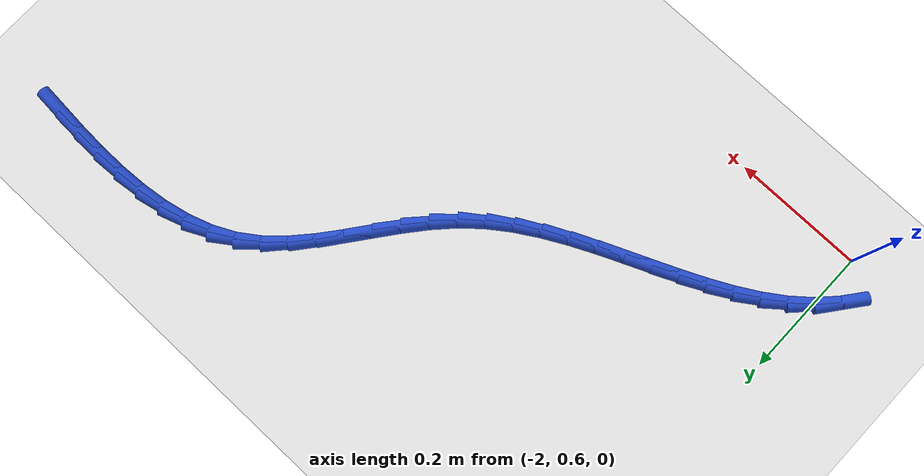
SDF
<sdf version="1.6">
 <world name="default">
  <model name="ground_plane">
   <static>1</static>
   <link name="link">
    <collision name="collision">
     <geometry><plane><normal>0 0 1</normal><size>100 100</size></plane></geometry>
     <surface><friction><ode><mu>100</mu><mu2>50</mu2></ode></friction></surface>
    </collision>
    <visual name="visual">
     <cast_shadows>0</cast_shadows>
     <geometry><plane><normal>0 0 1</normal><size>100 100</size></plane></geometry>
     <material>
      <script><uri>file://media/materials/scripts/gazebo.material</uri><name>Gazebo/WhiteGlow</name></script>
     </material>
    </visual>
   </link>
  </model>
  <model name="line">
   <link name="link_44">
    <pose>-1.0270762622498706 1.214170678971957 0.01 0 1.57 -0.0727830464954815</pose>
    <collision name="collision">
     <geometry><cylinder><radius>0.01</radius><length>0.08</length></cylinder></geometry>
    </collision>
    <visual name="visual">
     <material>
      <script><name>Gazebo/Blue</name><uri>file://media/materials/scripts/gazebo.material</uri></script>
     </material>
     <geometry><cylinder><radius>0.01</radius><length>0.08</length></cylinder></geometry>
    </visual>
   </link>
   <link name="link_45">
    <pose>-1.0687619582253773 1.217210059726688 0.01 0 1.57 -0.04250375442364984</pose>
    <collision name="collision">
     <geometry><cylinder><radius>0.01</radius><length>0.08</length></cylinder></geometry>
    </collision>
    <visual name="visual">
     <material>
      <script><name>Gazebo/Blue</name><uri>file://media/materials/scripts/gazebo.material</uri></script>
     </material>
     <geometry><cylinder><radius>0.01</radius><length>0.08</length></cylinder></geometry>
    </visual>
   </link>
   <link name="link_46">
    <pose>-1.1107633193106083 1.2189963510795672 0.01 0 1.57 -0.0006882578097971925</pose>
    <collision name="collision">
     <geometry><cylinder><radius>0.01</radius><length>0.08</length></cylinder></geometry>
    </collision>
    <visual name="visual">
     <material>
      <script><name>Gazebo/Blue</name><uri>file://media/materials/scripts/gazebo.material</uri></script>
     </material>
     <geometry><cylinder><radius>0.01</radius><length>0.08</length></cylinder></geometry>
    </visual>
   </link>
   <link name="link_47">
    <pose>-1.152607521391394 1.2190251506829914 0.01 0 1.57 0.05475779179109832</pose>
    <collision name="collision">
     <geometry><cylinder><radius>0.01</radius><length>0.08</length></cylinder></geometry>
    </collision>
    <visual name="visual">
     <material>
      <script><name>Gazebo/Blue</name><uri>file://media/materials/scripts/gazebo.material</uri></script>
     </material>
     <geometry><cylinder><radius>0.01</radius><length>0.08</length></cylinder></geometry>
    </visual>
   </link>
   <link name="link_48">
    <pose>-1.1938015529659616 1.2167671992687163 0.01 0 1.57 0.1260166704637612</pose>
    <collision name="collision">
     <geometry><cylinder><radius>0.01</radius><length>0.08</length></cylinder></geometry>
    </collision>
    <visual name="visual">
     <material>
      <script><name>Gazebo/Blue</name><uri>file://media/materials/scripts/gazebo.material</uri></script>
     </material>
     <geometry><cylinder><radius>0.01</radius><length>0.08</length></cylinder></geometry>
    </visual>
   </link>
   <link name="link_49">
    <pose>-1.2338524025325377 1.2116932375684957 0.01 0 1.57 0.2157557794045252</pose>
    <collision name="collision">
     <geometry><cylinder><radius>0.01</radius><length>0.08</length></cylinder></geometry>
    </collision>
    <visual name="visual">
     <material>
      <script><name>Gazebo/Blue</name><uri>file://media/materials/scripts/gazebo.material</uri></script>
     </material>
     <geometry><cylinder><radius>0.01</radius><length>0.08</length></cylinder></geometry>
    </visual>
   </link>
   <link name="link_50">
    <pose>-1.2722670585893485 1.2032740063140848 0.01 0 1.57 0.3266686214591587</pose>
    <collision name="collision">
     <geometry><cylinder><radius>0.01</radius><length>0.08</length></cylinder></geometry>
    </collision>
    <visual name="visual">
     <material>
      <script><name>Gazebo/Blue</name><uri>file://media/materials/scripts/gazebo.material</uri></script>
     </material>
     <geometry><cylinder><radius>0.01</radius><length>0.08</length></cylinder></geometry>
    </visual>
   </link>
   <link name="link_51">
    <pose>-1.308552509634621 1.1909802462372376 0.01 0 1.57 0.46045641087052736</pose>
    <collision name="collision">
     <geometry><cylinder><radius>0.01</radius><length>0.08</length></cylinder></geometry>
    </collision>
    <visual name="visual">
     <material>
      <script><name>Gazebo/Blue</name><uri>file://media/materials/scripts/gazebo.material</uri></script>
     </material>
     <geometry><cylinder><radius>0.01</radius><length>0.08</length></cylinder></geometry>
    </visual>
   </link>
   <link name="link_52">
    <pose>-1.3422157441665823 1.1742826980697096 0.01 0 1.57 0.6123308966010632</pose>
    <collision name="collision">
     <geometry><cylinder><radius>0.01</radius><length>0.08</length></cylinder></geometry>
    </collision>
    <visual name="visual">
     <material>
      <script><name>Gazebo/Blue</name><uri>file://media/materials/scripts/gazebo.material</uri></script>
     </material>
     <geometry><cylinder><radius>0.01</radius><length>0.08</length></cylinder></geometry>
    </visual>
   </link>
   <link name="link_53">
    <pose>-1.372851365841772 1.1527644199736857 0.01 0 1.57 0.7450191394744613</pose>
    <collision name="collision">
     <geometry><cylinder><radius>0.01</radius><length>0.08</length></cylinder></geometry>
    </collision>
    <visual name="visual">
     <material>
      <script><name>Gazebo/Blue</name><uri>file://media/materials/scripts/gazebo.material</uri></script>
     </material>
     <geometry><cylinder><radius>0.01</radius><length>0.08</length></cylinder></geometry>
    </visual>
   </link>
   <link name="link_54">
    <pose>-1.400809785552202 1.1269773701079138 0.01 0 1.57 0.839694833907889</pose>
    <collision name="collision">
     <geometry><cylinder><radius>0.01</radius><length>0.08</length></cylinder></geometry>
    </collision>
    <visual name="visual">
     <material>
      <script><name>Gazebo/Blue</name><uri>file://media/materials/scripts/gazebo.material</uri></script>
     </material>
     <geometry><cylinder><radius>0.01</radius><length>0.08</length></cylinder></geometry>
    </visual>
   </link>
   <link name="link_55">
    <pose>-1.4268277237244253 1.09796873251563 0.01 0 1.57 0.8985235812538525</pose>
    <collision name="collision">
     <geometry><cylinder><radius>0.01</radius><length>0.08</length></cylinder></geometry>
    </collision>
    <visual name="visual">
     <material>
      <script><name>Gazebo/Blue</name><uri>file://media/materials/scripts/gazebo.material</uri></script>
     </material>
     <geometry><cylinder><radius>0.01</radius><length>0.08</length></cylinder></geometry>
    </visual>
   </link>
   <link name="link_56">
    <pose>-1.451645009323115 1.0667896762013591 0.01 0 1.57 0.9246702709367717</pose>
    <collision name="collision">
     <geometry><cylinder><radius>0.01</radius><length>0.08</length></cylinder></geometry>
    </collision>
    <visual name="visual">
     <material>
      <script><name>Gazebo/Blue</name><uri>file://media/materials/scripts/gazebo.material</uri></script>
     </material>
     <geometry><cylinder><radius>0.01</radius><length>0.08</length></cylinder></geometry>
    </visual>
   </link>
   <link name="link_57">
    <pose>-1.4760014713129466 1.0344913701696272 0.01 0 1.57 0.9202013933354828</pose>
    <collision name="collision">
     <geometry><cylinder><radius>0.01</radius><length>0.08</length></cylinder></geometry>
    </collision>
    <visual name="visual">
     <material>
      <script><name>Gazebo/Blue</name><uri>file://media/materials/scripts/gazebo.material</uri></script>
     </material>
     <geometry><cylinder><radius>0.01</radius><length>0.08</length></cylinder></geometry>
    </visual>
   </link>
   <link name="link_58">
    <pose>-1.5006369386585932 1.0021249834249577 0.01 0 1.57 0.8855048744629658</pose>
    <collision name="collision">
     <geometry><cylinder><radius>0.01</radius><length>0.08</length></cylinder></geometry>
    </collision>
    <visual name="visual">
     <material>
      <script><name>Gazebo/Blue</name><uri>file://media/materials/scripts/gazebo.material</uri></script>
     </material>
     <geometry><cylinder><radius>0.01</radius><length>0.08</length></cylinder></geometry>
    </visual>
   </link>
   <link name="link_59">
    <pose>-1.5262912403247286 0.970741684971877 0.01 0 1.57 0.8194936094720184</pose>
    <collision name="collision">
     <geometry><cylinder><radius>0.01</radius><length>0.08</length></cylinder></geometry>
    </collision>
    <visual name="visual">
     <material>
      <script><name>Gazebo/Blue</name><uri>file://media/materials/scripts/gazebo.material</uri></script>
     </material>
     <geometry><cylinder><radius>0.01</radius><length>0.08</length></cylinder></geometry>
    </visual>
   </link>
   <link name="link_60">
    <pose>-1.5537042052760281 0.9413926438149092 0.01 0 1.57 0.7238740337518047</pose>
    <collision name="collision">
     <geometry><cylinder><radius>0.01</radius><length>0.08</length></cylinder></geometry>
    </collision>
    <visual name="visual">
     <material>
      <script><name>Gazebo/Blue</name><uri>file://media/materials/scripts/gazebo.material</uri></script>
     </material>
     <geometry><cylinder><radius>0.01</radius><length>0.08</length></cylinder></geometry>
    </visual>
   </link>
   <link name="link_61">
    <pose>-1.5835355423311497 0.9150233697677967 0.01 0 1.57 0.6284043990264641</pose>
    <collision name="collision">
     <geometry><cylinder><radius>0.01</radius><length>0.08</length></cylinder></geometry>
    </collision>
    <visual name="visual">
     <material>
      <script><name>Gazebo/Blue</name><uri>file://media/materials/scripts/gazebo.material</uri></script>
     </material>
     <geometry><cylinder><radius>0.01</radius><length>0.08</length></cylinder></geometry>
    </visual>
   </link>
   <link name="link_62">
    <pose>-1.6157260844606876 0.8916313484062057 0.01 0 1.57 0.5500857171411326</pose>
    <collision name="collision">
     <geometry><cylinder><radius>0.01</radius><length>0.08</length></cylinder></geometry>
    </collision>
    <visual name="visual">
     <material>
      <script><name>Gazebo/Blue</name><uri>file://media/materials/scripts/gazebo.material</uri></script>
     </material>
     <geometry><cylinder><radius>0.01</radius><length>0.08</length></cylinder></geometry>
    </visual>
   </link>
   <link name="link_63">
    <pose>-1.6498371894688357 0.8707136288862686 0.01 0 1.57 0.48929570230507824</pose>
    <collision name="collision">
     <geometry><cylinder><radius>0.01</radius><length>0.08</length></cylinder></geometry>
    </collision>
    <visual name="visual">
     <material>
      <script><name>Gazebo/Blue</name><uri>file://media/materials/scripts/gazebo.material</uri></script>
     </material>
     <geometry><cylinder><radius>0.01</radius><length>0.08</length></cylinder></geometry>
    </visual>
   </link>
   <link name="link_64">
    <pose>-1.6854267896014508 0.8517627428770731 0.01 0 1.57 0.4455437781821746</pose>
    <collision name="collision">
     <geometry><cylinder><radius>0.01</radius><length>0.08</length></cylinder></geometry>
    </collision>
    <visual name="visual">
     <material>
      <script><name>Gazebo/Blue</name><uri>file://media/materials/scripts/gazebo.material</uri></script>
     </material>
     <geometry><cylinder><radius>0.01</radius><length>0.08</length></cylinder></geometry>
    </visual>
   </link>
   <link name="link_65">
    <pose>-1.7220528171043918 0.8342712220477062 0.01 0 1.57 0.4181621753952915</pose>
    <collision name="collision">
     <geometry><cylinder><radius>0.01</radius><length>0.08</length></cylinder></geometry>
    </collision>
    <visual name="visual">
     <material>
      <script><name>Gazebo/Blue</name><uri>file://media/materials/scripts/gazebo.material</uri></script>
     </material>
     <geometry><cylinder><radius>0.01</radius><length>0.08</length></cylinder></geometry>
    </visual>
   </link>
   <link name="link_66">
    <pose>-1.7592732042235164 0.8177315980672555 0.01 0 1.57 0.4066611981520749</pose>
    <collision name="collision">
     <geometry><cylinder><radius>0.01</radius><length>0.08</length></cylinder></geometry>
    </collision>
    <visual name="visual">
     <material>
      <script><name>Gazebo/Blue</name><uri>file://media/materials/scripts/gazebo.material</uri></script>
     </material>
     <geometry><cylinder><radius>0.01</radius><length>0.08</length></cylinder></geometry>
    </visual>
   </link>
   <link name="link_67">
    <pose>-1.7966458832046823 0.8016364026048081 0.01 0 1.57 0.4109261468087719</pose>
    <collision name="collision">
     <geometry><cylinder><radius>0.01</radius><length>0.08</length></cylinder></geometry>
    </collision>
    <visual name="visual">
     <material>
      <script><name>Gazebo/Blue</name><uri>file://media/materials/scripts/gazebo.material</uri></script>
     </material>
     <geometry><cylinder><radius>0.01</radius><length>0.08</length></cylinder></geometry>
    </visual>
   </link>
   <link name="link_68">
    <pose>-1.833728786293748 0.7854781673294514 0.01 0 1.57 0.4313034782444437</pose>
    <collision name="collision">
     <geometry><cylinder><radius>0.01</radius><length>0.08</length></cylinder></geometry>
    </collision>
    <visual name="visual">
     <material>
      <script><name>Gazebo/Blue</name><uri>file://media/materials/scripts/gazebo.material</uri></script>
     </material>
     <geometry><cylinder><radius>0.01</radius><length>0.08</length></cylinder></geometry>
    </visual>
   </link>
   <link name="link_69">
    <pose>-1.8700798457365708 0.7687494239102722 0.01 0 1.57 0.46859637438087237</pose>
    <collision name="collision">
     <geometry><cylinder><radius>0.01</radius><length>0.08</length></cylinder></geometry>
    </collision>
    <visual name="visual">
     <material>
      <script><name>Gazebo/Blue</name><uri>file://media/materials/scripts/gazebo.material</uri></script>
     </material>
     <geometry><cylinder><radius>0.01</radius><length>0.08</length></cylinder></geometry>
    </visual>
   </link>
   <link name="link_70">
    <pose>-1.9052569937790094 0.7509427040163587 0.01 0 1.57 0.5239476533895783</pose>
    <collision name="collision">
     <geometry><cylinder><radius>0.01</radius><length>0.08</length></cylinder></geometry>
    </collision>
    <visual name="visual">
     <material>
      <script><name>Gazebo/Blue</name><uri>file://media/materials/scripts/gazebo.material</uri></script>
     </material>
     <geometry><cylinder><radius>0.01</radius><length>0.08</length></cylinder></geometry>
    </visual>
   </link>
   <link name="link_71">
    <pose>-1.9388181626669212 0.7315505393167971 0.01 0 1.57 0.5985418888384493</pose>
    <collision name="collision">
     <geometry><cylinder><radius>0.01</radius><length>0.08</length></cylinder></geometry>
    </collision>
    <visual name="visual">
     <material>
      <script><name>Gazebo/Blue</name><uri>file://media/materials/scripts/gazebo.material</uri></script>
     </material>
     <geometry><cylinder><radius>0.01</radius><length>0.08</length></cylinder></geometry>
    </visual>
   </link>
   <link name="link_72">
    <pose>-1.9703212846461642 0.7100654614806758 0.01 0 1.57 0.6930324238551998</pose>
    <collision name="collision">
     <geometry><cylinder><radius>0.01</radius><length>0.08</length></cylinder></geometry>
    </collision>
    <visual name="visual">
     <material>
      <script><name>Gazebo/Blue</name><uri>file://media/materials/scripts/gazebo.material</uri></script>
     </material>
     <geometry><cylinder><radius>0.01</radius><length>0.08</length></cylinder></geometry>
    </visual>
   </link>
   <link name="link_73">
    <pose>-1.9993242919625964 0.6859800021770815 0.01 0 1.57 0.8052334358060059</pose>
    <collision name="collision">
     <geometry><cylinder><radius>0.01</radius><length>0.08</length></cylinder></geometry>
    </collision>
    <visual name="visual">
     <material>
      <script><name>Gazebo/Blue</name><uri>file://media/materials/scripts/gazebo.material</uri></script>
     </material>
     <geometry><cylinder><radius>0.01</radius><length>0.08</length></cylinder></geometry>
    </visual>
   </link>
   <link name="link_74">
    <pose>-2.02541877328017 0.6588292485912132 0.01 0 1.57 0.915270882485525</pose>
    <collision name="collision">
     <geometry><cylinder><radius>0.01</radius><length>0.08</length></cylinder></geometry>
    </collision>
    <visual name="visual">
     <material>
      <script><name>Gazebo/Blue</name><uri>file://media/materials/scripts/gazebo.material</uri></script>
     </material>
     <geometry><cylinder><radius>0.01</radius><length>0.08</length></cylinder></geometry>
    </visual>
   </link>
  </model>
 </world>
</sdf>
